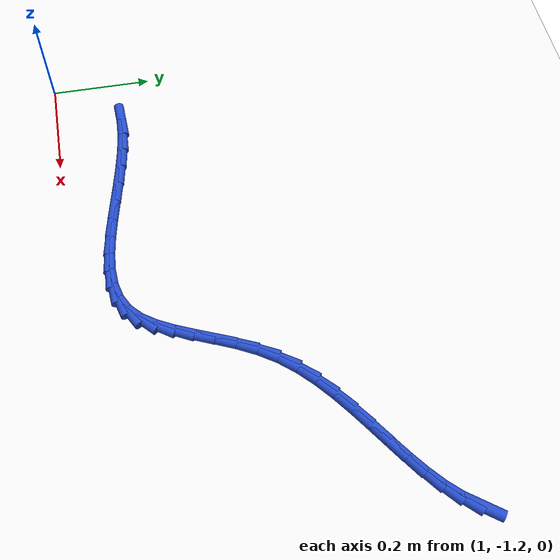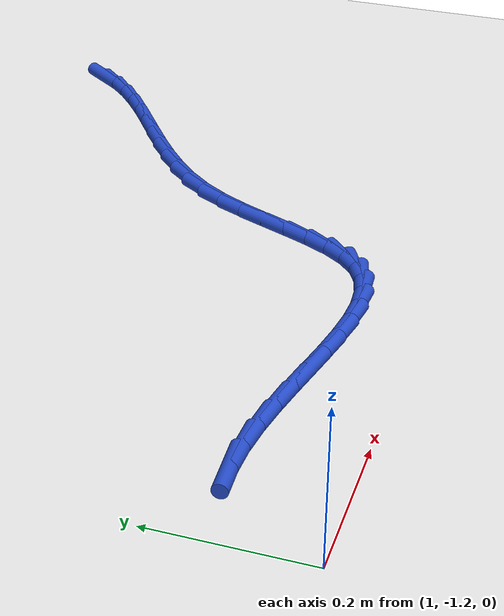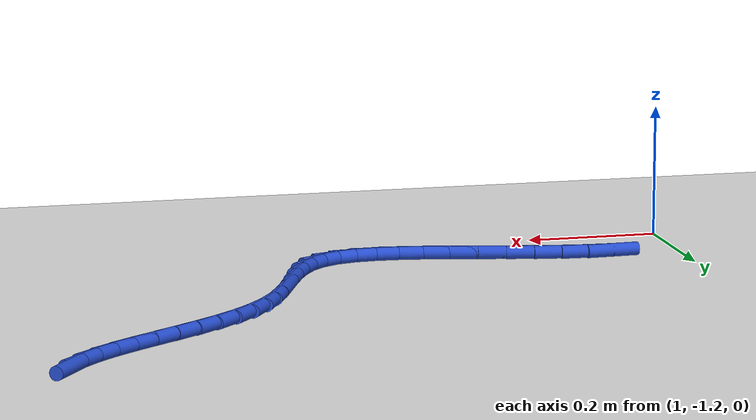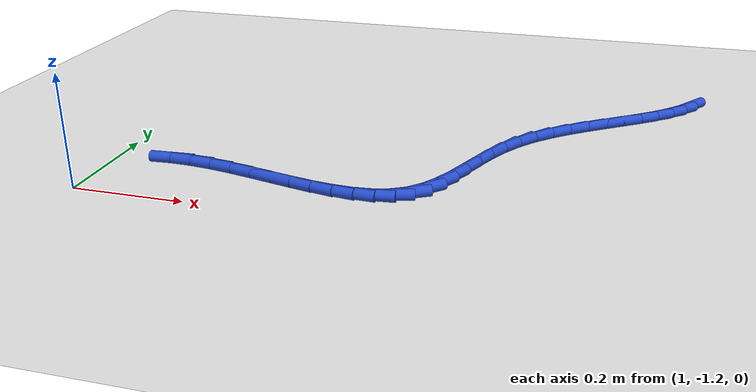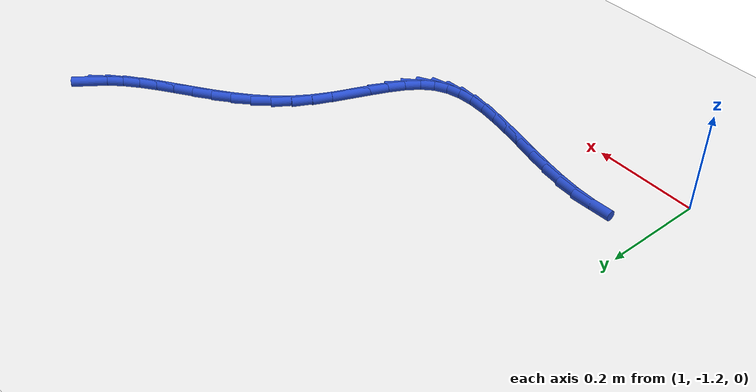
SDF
<sdf version="1.6">
 <world name="default">
  <model name="ground_plane">
   <static>1</static>
   <link name="link">
    <collision name="collision">
     <geometry><plane><normal>0 0 1</normal><size>100 100</size></plane></geometry>
     <surface><friction><ode><mu>100</mu><mu2>50</mu2></ode></friction></surface>
    </collision>
    <visual name="visual">
     <cast_shadows>0</cast_shadows>
     <geometry><plane><normal>0 0 1</normal><size>100 100</size></plane></geometry>
     <material>
      <script><uri>file://media/materials/scripts/gazebo.material</uri><name>Gazebo/WhiteGlow</name></script>
     </material>
    </visual>
   </link>
  </model>
  <model name="line">
   <link name="link_111">
    <pose>1.9927854880251037 -0.5715813544435062 0.01 0 1.57 0.9491131953525257</pose>
    <collision name="collision">
     <geometry><cylinder><radius>0.01</radius><length>0.08</length></cylinder></geometry>
    </collision>
    <visual name="visual">
     <material>
      <script><name>Gazebo/Blue</name><uri>file://media/materials/scripts/gazebo.material</uri></script>
     </material>
     <geometry><cylinder><radius>0.01</radius><length>0.08</length></cylinder></geometry>
    </visual>
   </link>
   <link name="link_112">
    <pose>1.9739692624840561 -0.5978443817323071 0.01 0 1.57 0.8158263104270099</pose>
    <collision name="collision">
     <geometry><cylinder><radius>0.01</radius><length>0.08</length></cylinder></geometry>
    </collision>
    <visual name="visual">
     <material>
      <script><name>Gazebo/Blue</name><uri>file://media/materials/scripts/gazebo.material</uri></script>
     </material>
     <geometry><cylinder><radius>0.01</radius><length>0.08</length></cylinder></geometry>
    </visual>
   </link>
   <link name="link_113">
    <pose>1.9509278162932853 -0.6223325113529729 0.01 0 1.57 0.7197171726347027</pose>
    <collision name="collision">
     <geometry><cylinder><radius>0.01</radius><length>0.08</length></cylinder></geometry>
    </collision>
    <visual name="visual">
     <material>
      <script><name>Gazebo/Blue</name><uri>file://media/materials/scripts/gazebo.material</uri></script>
     </material>
     <geometry><cylinder><radius>0.01</radius><length>0.08</length></cylinder></geometry>
    </visual>
   </link>
   <link name="link_114">
    <pose>1.924461811188793 -0.6455317547806375 0.01 0 1.57 0.6561170790369216</pose>
    <collision name="collision">
     <geometry><cylinder><radius>0.01</radius><length>0.08</length></cylinder></geometry>
    </collision>
    <visual name="visual">
     <material>
      <script><name>Gazebo/Blue</name><uri>file://media/materials/scripts/gazebo.material</uri></script>
     </material>
     <geometry><cylinder><radius>0.01</radius><length>0.08</length></cylinder></geometry>
    </visual>
   </link>
   <link name="link_115">
    <pose>1.8953719089065812 -0.6679281234904361 0.01 0 1.57 0.6202214852348836</pose>
    <collision name="collision">
     <geometry><cylinder><radius>0.01</radius><length>0.08</length></cylinder></geometry>
    </collision>
    <visual name="visual">
     <material>
      <script><name>Gazebo/Blue</name><uri>file://media/materials/scripts/gazebo.material</uri></script>
     </material>
     <geometry><cylinder><radius>0.01</radius><length>0.08</length></cylinder></geometry>
    </visual>
   </link>
   <link name="link_116">
    <pose>1.8644587711826512 -0.6900076289575032 0.01 0 1.57 0.6084876010826014</pose>
    <collision name="collision">
     <geometry><cylinder><radius>0.01</radius><length>0.08</length></cylinder></geometry>
    </collision>
    <visual name="visual">
     <material>
      <script><name>Gazebo/Blue</name><uri>file://media/materials/scripts/gazebo.material</uri></script>
     </material>
     <geometry><cylinder><radius>0.01</radius><length>0.08</length></cylinder></geometry>
    </visual>
   </link>
   <link name="link_117">
    <pose>1.8325230597530042 -0.7122562826569734 0.01 0 1.57 0.6188908511520558</pose>
    <collision name="collision">
     <geometry><cylinder><radius>0.01</radius><length>0.08</length></cylinder></geometry>
    </collision>
    <visual name="visual">
     <material>
      <script><name>Gazebo/Blue</name><uri>file://media/materials/scripts/gazebo.material</uri></script>
     </material>
     <geometry><cylinder><radius>0.01</radius><length>0.08</length></cylinder></geometry>
    </visual>
   </link>
   <link name="link_118">
    <pose>1.8003654363536432 -0.7351600960639816 0.01 0 1.57 0.6507739168130345</pose>
    <collision name="collision">
     <geometry><cylinder><radius>0.01</radius><length>0.08</length></cylinder></geometry>
    </collision>
    <visual name="visual">
     <material>
      <script><name>Gazebo/Blue</name><uri>file://media/materials/scripts/gazebo.material</uri></script>
     </material>
     <geometry><cylinder><radius>0.01</radius><length>0.08</length></cylinder></geometry>
    </visual>
   </link>
   <link name="link_119">
    <pose>1.7687865627205688 -0.7592050806536632 0.01 0 1.57 0.7045445139873422</pose>
    <collision name="collision">
     <geometry><cylinder><radius>0.01</radius><length>0.08</length></cylinder></geometry>
    </collision>
    <visual name="visual">
     <material>
      <script><name>Gazebo/Blue</name><uri>file://media/materials/scripts/gazebo.material</uri></script>
     </material>
     <geometry><cylinder><radius>0.01</radius><length>0.08</length></cylinder></geometry>
    </visual>
   </link>
   <link name="link_120">
    <pose>1.7385871005897817 -0.7848772479011521 0.01 0 1.57 0.7812045035568801</pose>
    <collision name="collision">
     <geometry><cylinder><radius>0.01</radius><length>0.08</length></cylinder></geometry>
    </collision>
    <visual name="visual">
     <material>
      <script><name>Gazebo/Blue</name><uri>file://media/materials/scripts/gazebo.material</uri></script>
     </material>
     <geometry><cylinder><radius>0.01</radius><length>0.08</length></cylinder></geometry>
    </visual>
   </link>
   <link name="link_121">
    <pose>1.7105677116972855 -0.8126626092815838 0.01 0 1.57 0.8815568821361417</pose>
    <collision name="collision">
     <geometry><cylinder><radius>0.01</radius><length>0.08</length></cylinder></geometry>
    </collision>
    <visual name="visual">
     <material>
      <script><name>Gazebo/Blue</name><uri>file://media/materials/scripts/gazebo.material</uri></script>
     </material>
     <geometry><cylinder><radius>0.01</radius><length>0.08</length></cylinder></geometry>
    </visual>
   </link>
   <link name="link_122">
    <pose>1.6855290577790814 -0.8430471762700928 0.01 0 1.57 1.0015344097621266</pose>
    <collision name="collision">
     <geometry><cylinder><radius>0.01</radius><length>0.08</length></cylinder></geometry>
    </collision>
    <visual name="visual">
     <material>
      <script><name>Gazebo/Blue</name><uri>file://media/materials/scripts/gazebo.material</uri></script>
     </material>
     <geometry><cylinder><radius>0.01</radius><length>0.08</length></cylinder></geometry>
    </visual>
   </link>
   <link name="link_123">
    <pose>1.6641731943993836 -0.87641948144949 0.01 0 1.57 1.1018580371828501</pose>
    <collision name="collision">
     <geometry><cylinder><radius>0.01</radius><length>0.08</length></cylinder></geometry>
    </collision>
    <visual name="visual">
     <material>
      <script><name>Gazebo/Blue</name><uri>file://media/materials/scripts/gazebo.material</uri></script>
     </material>
     <geometry><cylinder><radius>0.01</radius><length>0.08</length></cylinder></geometry>
    </visual>
   </link>
   <link name="link_124">
    <pose>1.6461048250935213 -0.912083250454633 0.01 0 1.57 1.161666771728569</pose>
    <collision name="collision">
     <geometry><cylinder><radius>0.01</radius><length>0.08</length></cylinder></geometry>
    </collision>
    <visual name="visual">
     <material>
      <script><name>Gazebo/Blue</name><uri>file://media/materials/scripts/gazebo.material</uri></script>
     </material>
     <geometry><cylinder><radius>0.01</radius><length>0.08</length></cylinder></geometry>
    </visual>
   </link>
   <link name="link_125">
    <pose>1.6302432528522852 -0.9486646439701388 0.01 0 1.57 1.1831498379116812</pose>
    <collision name="collision">
     <geometry><cylinder><radius>0.01</radius><length>0.08</length></cylinder></geometry>
    </collision>
    <visual name="visual">
     <material>
      <script><name>Gazebo/Blue</name><uri>file://media/materials/scripts/gazebo.material</uri></script>
     </material>
     <geometry><cylinder><radius>0.01</radius><length>0.08</length></cylinder></geometry>
    </visual>
   </link>
   <link name="link_126">
    <pose>1.6154973297746724 -0.9847794912648837 0.01 0 1.57 1.164997675526621</pose>
    <collision name="collision">
     <geometry><cylinder><radius>0.01</radius><length>0.08</length></cylinder></geometry>
    </collision>
    <visual name="visual">
     <material>
      <script><name>Gazebo/Blue</name><uri>file://media/materials/scripts/gazebo.material</uri></script>
     </material>
     <geometry><cylinder><radius>0.01</radius><length>0.08</length></cylinder></geometry>
    </visual>
   </link>
   <link name="link_127">
    <pose>1.6007759079596822 -1.0190436216077412 0.01 0 1.57 1.1001235481057656</pose>
    <collision name="collision">
     <geometry><cylinder><radius>0.01</radius><length>0.08</length></cylinder></geometry>
    </collision>
    <visual name="visual">
     <material>
      <script><name>Gazebo/Blue</name><uri>file://media/materials/scripts/gazebo.material</uri></script>
     </material>
     <geometry><cylinder><radius>0.01</radius><length>0.08</length></cylinder></geometry>
    </visual>
   </link>
   <link name="link_128">
    <pose>1.584987839506312 -1.050072864267586 0.01 0 1.57 0.973957952914783</pose>
    <collision name="collision">
     <geometry><cylinder><radius>0.01</radius><length>0.08</length></cylinder></geometry>
    </collision>
    <visual name="visual">
     <material>
      <script><name>Gazebo/Blue</name><uri>file://media/materials/scripts/gazebo.material</uri></script>
     </material>
     <geometry><cylinder><radius>0.01</radius><length>0.08</length></cylinder></geometry>
    </visual>
   </link>
   <link name="link_129">
    <pose>1.5670419765135606 -1.0764830485132921 0.01 0 1.57 0.7665216072592941</pose>
    <collision name="collision">
     <geometry><cylinder><radius>0.01</radius><length>0.08</length></cylinder></geometry>
    </collision>
    <visual name="visual">
     <material>
      <script><name>Gazebo/Blue</name><uri>file://media/materials/scripts/gazebo.material</uri></script>
     </material>
     <geometry><cylinder><radius>0.01</radius><length>0.08</length></cylinder></geometry>
    </visual>
   </link>
   <link name="link_130">
    <pose>1.5458481548405079 -1.0968914698232237 0.01 0 1.57 0.49649370672692233</pose>
    <collision name="collision">
     <geometry><cylinder><radius>0.01</radius><length>0.08</length></cylinder></geometry>
    </collision>
    <visual name="visual">
     <material>
      <script><name>Gazebo/Blue</name><uri>file://media/materials/scripts/gazebo.material</uri></script>
     </material>
     <geometry><cylinder><radius>0.01</radius><length>0.08</length></cylinder></geometry>
    </visual>
   </link>
   <link name="link_131">
    <pose>1.5207139092378459 -1.1105081595471347 0.01 0 1.57 0.25618082516513535</pose>
    <collision name="collision">
     <geometry><cylinder><radius>0.01</radius><length>0.08</length></cylinder></geometry>
    </collision>
    <visual name="visual">
     <material>
      <script><name>Gazebo/Blue</name><uri>file://media/materials/scripts/gazebo.material</uri></script>
     </material>
     <geometry><cylinder><radius>0.01</radius><length>0.08</length></cylinder></geometry>
    </visual>
   </link>
   <link name="link_132">
    <pose>1.491952339266624 -1.1180418565913623 0.01 0 1.57 0.07482081933025078</pose>
    <collision name="collision">
     <geometry><cylinder><radius>0.01</radius><length>0.08</length></cylinder></geometry>
    </collision>
    <visual name="visual">
     <material>
      <script><name>Gazebo/Blue</name><uri>file://media/materials/scripts/gazebo.material</uri></script>
     </material>
     <geometry><cylinder><radius>0.01</radius><length>0.08</length></cylinder></geometry>
    </visual>
   </link>
   <link name="link_133">
    <pose>1.460033045339692 -1.1204345508738087 0.01 0 1.57 -0.052147229378188914</pose>
    <collision name="collision">
     <geometry><cylinder><radius>0.01</radius><length>0.08</length></cylinder></geometry>
    </collision>
    <visual name="visual">
     <material>
      <script><name>Gazebo/Blue</name><uri>file://media/materials/scripts/gazebo.material</uri></script>
     </material>
     <geometry><cylinder><radius>0.01</radius><length>0.08</length></cylinder></geometry>
    </visual>
   </link>
   <link name="link_134">
    <pose>1.4254256278699013 -1.1186282323123742 0.01 0 1.57 -0.1366371568368596</pose>
    <collision name="collision">
     <geometry><cylinder><radius>0.01</radius><length>0.08</length></cylinder></geometry>
    </collision>
    <visual name="visual">
     <material>
      <script><name>Gazebo/Blue</name><uri>file://media/materials/scripts/gazebo.material</uri></script>
     </material>
     <geometry><cylinder><radius>0.01</radius><length>0.08</length></cylinder></geometry>
    </visual>
   </link>
   <link name="link_135">
    <pose>1.3885996872701039 -1.1135648908249611 0.01 0 1.57 -0.18899142202141928</pose>
    <collision name="collision">
     <geometry><cylinder><radius>0.01</radius><length>0.08</length></cylinder></geometry>
    </collision>
    <visual name="visual">
     <material>
      <script><name>Gazebo/Blue</name><uri>file://media/materials/scripts/gazebo.material</uri></script>
     </material>
     <geometry><cylinder><radius>0.01</radius><length>0.08</length></cylinder></geometry>
    </visual>
   </link>
   <link name="link_136">
    <pose>1.3500248239531505 -1.10618651632947 0.01 0 1.57 -0.2161552966312816</pose>
    <collision name="collision">
     <geometry><cylinder><radius>0.01</radius><length>0.08</length></cylinder></geometry>
    </collision>
    <visual name="visual">
     <material>
      <script><name>Gazebo/Blue</name><uri>file://media/materials/scripts/gazebo.material</uri></script>
     </material>
     <geometry><cylinder><radius>0.01</radius><length>0.08</length></cylinder></geometry>
    </visual>
   </link>
   <link name="link_137">
    <pose>1.3101706383318923 -1.097435098743802 0.01 0 1.57 -0.2220888769203791</pose>
    <collision name="collision">
     <geometry><cylinder><radius>0.01</radius><length>0.08</length></cylinder></geometry>
    </collision>
    <visual name="visual">
     <material>
      <script><name>Gazebo/Blue</name><uri>file://media/materials/scripts/gazebo.material</uri></script>
     </material>
     <geometry><cylinder><radius>0.01</radius><length>0.08</length></cylinder></geometry>
    </visual>
   </link>
   <link name="link_138">
    <pose>1.2695067308191808 -1.0882526279858582 0.01 0 1.57 -0.20840930597825966</pose>
    <collision name="collision">
     <geometry><cylinder><radius>0.01</radius><length>0.08</length></cylinder></geometry>
    </collision>
    <visual name="visual">
     <material>
      <script><name>Gazebo/Blue</name><uri>file://media/materials/scripts/gazebo.material</uri></script>
     </material>
     <geometry><cylinder><radius>0.01</radius><length>0.08</length></cylinder></geometry>
    </visual>
   </link>
   <link name="link_139">
    <pose>1.2285027018278674 -1.0795810939735402 0.01 0 1.57 -0.17480153852052135</pose>
    <collision name="collision">
     <geometry><cylinder><radius>0.01</radius><length>0.08</length></cylinder></geometry>
    </collision>
    <visual name="visual">
     <material>
      <script><name>Gazebo/Blue</name><uri>file://media/materials/scripts/gazebo.material</uri></script>
     </material>
     <geometry><cylinder><radius>0.01</radius><length>0.08</length></cylinder></geometry>
    </visual>
   </link>
   <link name="link_140">
    <pose>1.1876281517708016 -1.072362486624749 0.01 0 1.57 -0.11919967929154994</pose>
    <collision name="collision">
     <geometry><cylinder><radius>0.01</radius><length>0.08</length></cylinder></geometry>
    </collision>
    <visual name="visual">
     <material>
      <script><name>Gazebo/Blue</name><uri>file://media/materials/scripts/gazebo.material</uri></script>
     </material>
     <geometry><cylinder><radius>0.01</radius><length>0.08</length></cylinder></geometry>
    </visual>
   </link>
   <link name="link_141">
    <pose>1.147352681060836 -1.0675387958573856 0.01 0 1.57 -0.03841934509802815</pose>
    <collision name="collision">
     <geometry><cylinder><radius>0.01</radius><length>0.08</length></cylinder></geometry>
    </collision>
    <visual name="visual">
     <material>
      <script><name>Gazebo/Blue</name><uri>file://media/materials/scripts/gazebo.material</uri></script>
     </material>
     <geometry><cylinder><radius>0.01</radius><length>0.08</length></cylinder></geometry>
    </visual>
   </link>
   <link name="link_142">
    <pose>1.1081385996276505 -1.0660314748320177 0.01 0 1.57 0.050688386396471975</pose>
    <collision name="collision">
     <geometry><cylinder><radius>0.01</radius><length>0.08</length></cylinder></geometry>
    </collision>
    <visual name="visual">
     <material>
      <script><name>Gazebo/Blue</name><uri>file://media/materials/scripts/gazebo.material</uri></script>
     </material>
     <geometry><cylinder><radius>0.01</radius><length>0.08</length></cylinder></geometry>
    </visual>
   </link>
  </model>
 </world>
</sdf>
